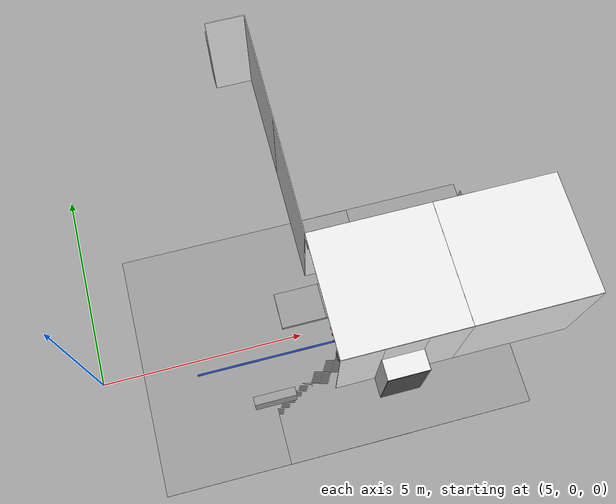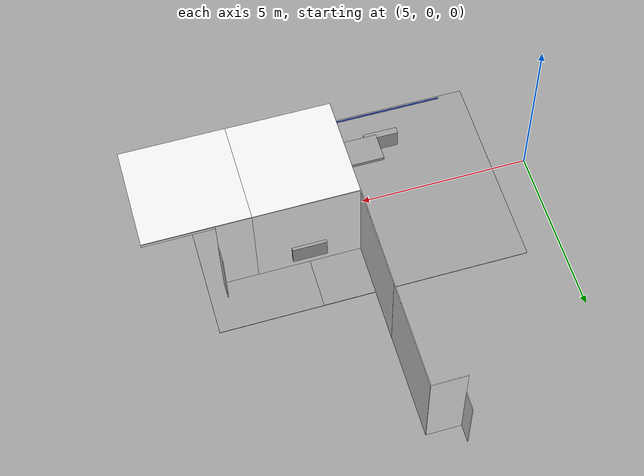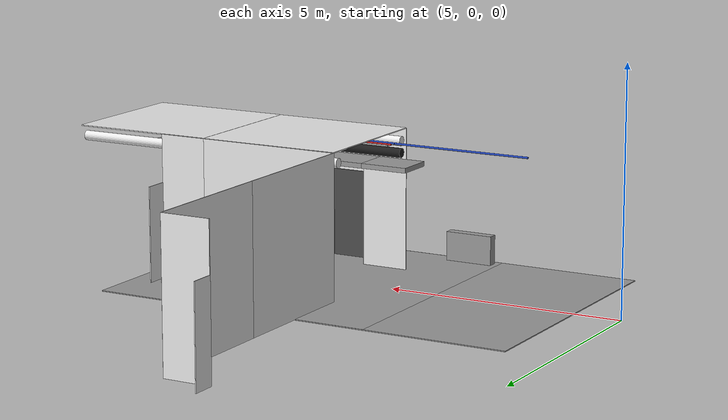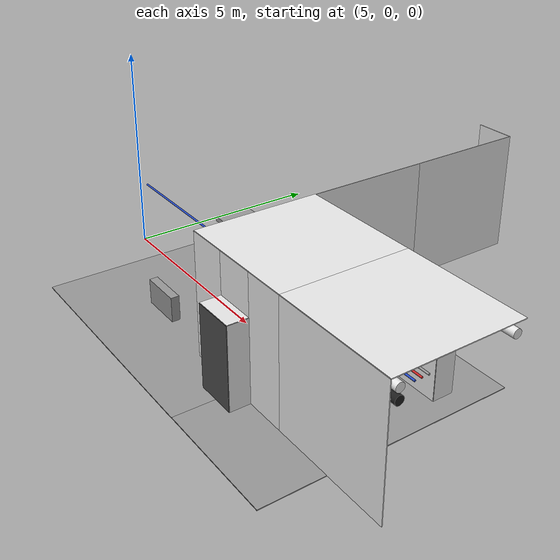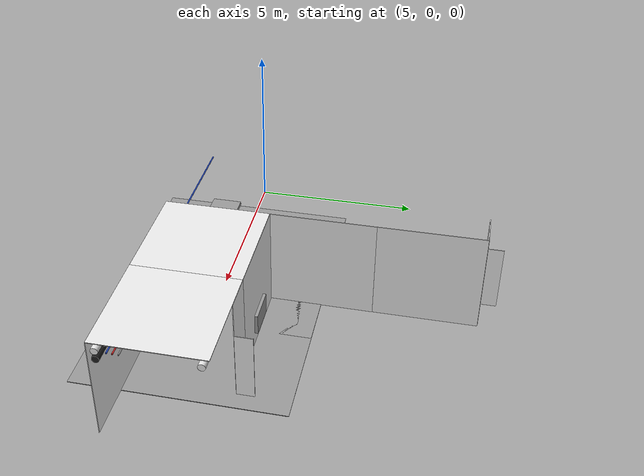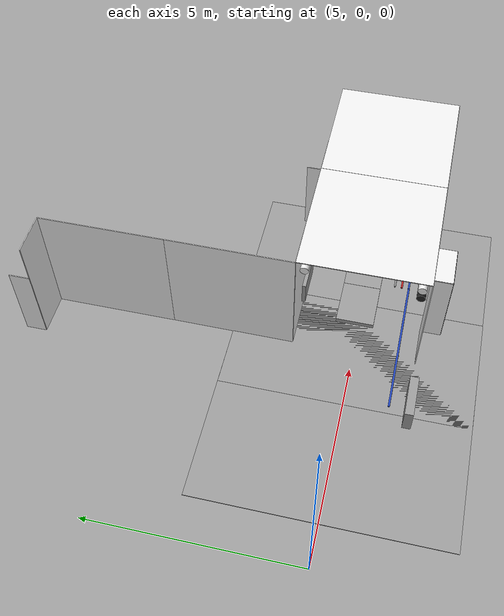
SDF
<sdf version="1.6">
 <world name="default">
  <model name="wall_front_3_2_0_2">
   <static>1</static>
   <pose>10.5 6.0 1.5 0.0 0.0 -1.57</pose>
   <link name="link">
    <collision name="collision"><geometry><box><size>3.0 0.02 3.0</size></box></geometry></collision>
    <visual name="visual">
     <material>
      <script><name>Gazebo/White</name><uri>file://media/materials/scripts/gazebo.material</uri></script>
     </material>
     <geometry><box><size>3.0 0.02 3.0</size></box></geometry>
    </visual>
   </link>
  </model>
  <model name="wall_left_front_left_3_2_0_2">
   <static>1</static>
   <pose>10.0 7.5 1.5 0.0 0.0 0.0</pose>
   <link name="link">
    <collision name="collision"><geometry><box><size>1.0 0.02 3.0</size></box></geometry></collision>
    <visual name="visual">
     <material>
      <script><name>Gazebo/White</name><uri>file://media/materials/scripts/gazebo.material</uri></script>
     </material>
     <geometry><box><size>1.0 0.02 3.0</size></box></geometry>
    </visual>
   </link>
  </model>
  <model name="wall_left_inside_left_3_2_0_2">
   <static>1</static>
   <pose>9.5 7.75 1.0 0.0 0.0 -1.57</pose>
   <link name="link">
    <collision name="collision"><geometry><box><size>0.5 0.02 2</size></box></geometry></collision>
    <visual name="visual">
     <material>
      <script><name>Gazebo/White</name><uri>file://media/materials/scripts/gazebo.material</uri></script>
     </material>
     <geometry><box><size>0.5 0.02 2</size></box></geometry>
    </visual>
   </link>
  </model>
  <model name="wall_left_3_1_0_1">
   <static>1</static>
   <pose>10.5 3.0 1.5 0.0 0.0 4.71</pose>
   <link name="link">
    <collision name="collision"><geometry><box><size>3.0 0.02 3.0</size></box></geometry></collision>
    <visual name="visual">
     <material>
      <script><name>Gazebo/White</name><uri>file://media/materials/scripts/gazebo.material</uri></script>
     </material>
     <geometry><box><size>3.0 0.02 3.0</size></box></geometry>
    </visual>
   </link>
  </model>
  <model name="ceiling_1_3_0_1_3">
   <pose>10.0 0.0 2.55 0.0 0.0 4.71</pose>
   <link name="link_1">
    <visual name="visual">
     <geometry><box><size>0.8 1 0.1</size></box></geometry>
     <material>
      <script><uri>file://media/materials/scripts/gazebo.material</uri><name>Gazebo/Grey</name></script>
     </material>
    </visual>
    <collision name="collision"><geometry><box><size>0.8 1 0.1</size></box></geometry></collision>
   </link>
   <static>1</static>
  </model>
  <model name="blue_pipe_right_1_3_0_0_3">
   <static>1</static>
   <pose>9.0 0.0 2.76 0.0 0.0 4.71</pose>
   <link name="link_0">
    <visual name="visual">
     <pose>1 0 0 1.57 0 0</pose>
     <geometry><cylinder><radius>0.02</radius><length>3.0</length></cylinder></geometry>
     <material>
      <script><uri>file://media/materials/scripts/gazebo.material</uri><name>Gazebo/Blue</name></script>
     </material>
    </visual>
    <collision name="collision">
     <pose>1 0 0 1.57 0 0</pose>
     <geometry><cylinder><radius>0.02</radius><length>3.0</length></cylinder></geometry>
    </collision>
   </link>
  </model>
  <model name="wall_bottom_3_0_0_3">
   <static>1</static>
   <pose>9.0 0.0 0.0 0.0 0.0 3.14</pose>
   <link name="link">
    <collision name="collision"><geometry><box><size>6.0 6.0 0.02</size></box></geometry></collision>
    <visual name="visual">
     <material>
      <script><name>Gazebo/Grey</name><uri>file://media/materials/scripts/gazebo.material</uri></script>
     </material>
     <geometry><box><size>6.0 6.0 0.02</size></box></geometry>
    </visual>
   </link>
  </model>
  <model name="panel_3_0_0_3">
   <static>1</static>
   <pose>9.0 -1.5 0.66 0.0 0.0 4.71</pose>
   <link name="link">
    <collision name="collision"><geometry><box><size>0.2 1 0.6</size></box></geometry></collision>
    <visual name="visual">
     <material>
      <script><name>Gazebo/Grey</name><uri>file://media/materials/scripts/gazebo.material</uri></script>
     </material>
     <geometry><box><size>0.2 1 0.6</size></box></geometry>
    </visual>
   </link>
  </model>
  <model name="wall_left_4_0_0_1">
   <static>1</static>
   <pose>12.0 1.5 1.5 0.0 0.0 0.0</pose>
   <link name="link">
    <collision name="collision"><geometry><box><size>3.0 0.02 3.0</size></box></geometry></collision>
    <visual name="visual">
     <material>
      <script><name>Gazebo/White</name><uri>file://media/materials/scripts/gazebo.material</uri></script>
     </material>
     <geometry><box><size>3.0 0.02 3.0</size></box></geometry>
    </visual>
   </link>
  </model>
  <model name="wall_top_4_0_0_1">
   <static>1</static>
   <pose>12.0 0.0 3.0 1.57 0.0 -1.57</pose>
   <link name="link">
    <collision name="collision"><geometry><box><size>3.0 0.02 3.0</size></box></geometry></collision>
    <visual name="visual">
     <material>
      <script><name>Gazebo/White</name><uri>file://media/materials/scripts/gazebo.material</uri></script>
     </material>
     <geometry><box><size>3.0 0.02 3.0</size></box></geometry>
    </visual>
   </link>
  </model>
  <model name="ceiling_1_4_0_0_1">
   <pose>12.0 0.0 2.55 0.0 0.0 -1.57</pose>
   <link name="link_1">
    <visual name="visual">
     <geometry><box><size>0.8 1 0.1</size></box></geometry>
     <material>
      <script><uri>file://media/materials/scripts/gazebo.material</uri><name>Gazebo/Grey</name></script>
     </material>
    </visual>
    <collision name="collision"><geometry><box><size>0.8 1 0.1</size></box></geometry></collision>
   </link>
   <static>1</static>
  </model>
  <model name="ceiling_1_4_0_1_1">
   <pose>11.0 0.0 2.55 0.0 0.0 -1.57</pose>
   <link name="link_1">
    <visual name="visual">
     <geometry><box><size>0.8 1 0.1</size></box></geometry>
     <material>
      <script><uri>file://media/materials/scripts/gazebo.material</uri><name>Gazebo/Grey</name></script>
     </material>
    </visual>
    <collision name="collision"><geometry><box><size>0.8 1 0.1</size></box></geometry></collision>
   </link>
   <static>1</static>
  </model>
  <model name="ceiling_1_4_0_2_1">
   <pose>13.0 0.0 2.55 0.0 0.0 -1.57</pose>
   <link name="link_1">
    <visual name="visual">
     <geometry><box><size>0.8 1 0.1</size></box></geometry>
     <material>
      <script><uri>file://media/materials/scripts/gazebo.material</uri><name>Gazebo/Grey</name></script>
     </material>
    </visual>
    <collision name="collision"><geometry><box><size>0.8 1 0.1</size></box></geometry></collision>
   </link>
   <static>1</static>
  </model>
  <model name="white_pipe_left_4_0_0_1">
   <static>1</static>
   <pose>12.0 0.0 2.76 0.0 0.0 -1.57</pose>
   <link name="link_0">
    <visual name="visual">
     <pose>-1.3 0 0 1.57 0 0</pose>
     <geometry><cylinder><radius>0.1</radius><length>3.0</length></cylinder></geometry>
     <material>
      <script><uri>file://media/materials/scripts/gazebo.material</uri><name>Gazebo/White</name></script>
     </material>
    </visual>
    <collision name="collision">
     <pose>-1.3 0 0 1.57 0 0</pose>
     <geometry><cylinder><radius>0.1</radius><length>3.0</length></cylinder></geometry>
    </collision>
   </link>
  </model>
  <model name="white_pipe_right_4_0_0_1">
   <static>1</static>
   <pose>12.0 0.0 2.76 0.0 0.0 -1.57</pose>
   <link name="link_0">
    <visual name="visual">
     <pose>1.3 0 0 1.57 0 0</pose>
     <geometry><cylinder><radius>0.1</radius><length>3.0</length></cylinder></geometry>
     <material>
      <script><uri>file://media/materials/scripts/gazebo.material</uri><name>Gazebo/White</name></script>
     </material>
    </visual>
    <collision name="collision">
     <pose>1.3 0 0 1.57 0 0</pose>
     <geometry><cylinder><radius>0.1</radius><length>3.0</length></cylinder></geometry>
    </collision>
   </link>
  </model>
  <model name="black_pipe_right_4_0_0_1">
   <static>1</static>
   <pose>12.0 0.0 2.76 0.0 0.0 -1.57</pose>
   <link name="link_0">
    <visual name="visual">
     <pose>1.3 0 -0.25 1.57 0 0</pose>
     <geometry><cylinder><radius>0.1</radius><length>3.0</length></cylinder></geometry>
     <material>
      <script><uri>file://media/materials/scripts/gazebo.material</uri><name>Gazebo/Black</name></script>
     </material>
    </visual>
    <collision name="collision">
     <pose>1.3 0 -0.25 1.57 0 0</pose>
     <geometry><cylinder><radius>0.1</radius><length>3.0</length></cylinder></geometry>
    </collision>
   </link>
  </model>
  <model name="grey_pipe_right_4_0_0_1">
   <static>1</static>
   <pose>12.0 0.0 2.76 0.0 0.0 -1.57</pose>
   <link name="link_0">
    <visual name="visual">
     <pose>0.7 0 0 1.57 0 0</pose>
     <geometry><cylinder><radius>0.02</radius><length>3.0</length></cylinder></geometry>
     <material>
      <script><uri>file://media/materials/scripts/gazebo.material</uri><name>Gazebo/Grey</name></script>
     </material>
    </visual>
    <collision name="collision">
     <pose>0.7 0 0 1.57 0 0</pose>
     <geometry><cylinder><radius>0.02</radius><length>3.0</length></cylinder></geometry>
    </collision>
   </link>
  </model>
  <model name="red_pipe_right_4_0_0_1">
   <static>1</static>
   <pose>12.0 0.0 2.76 0.0 0.0 -1.57</pose>
   <link name="link_0">
    <visual name="visual">
     <pose>0.85 0 0 1.57 0 0</pose>
     <geometry><cylinder><radius>0.02</radius><length>3.0</length></cylinder></geometry>
     <material>
      <script><uri>file://media/materials/scripts/gazebo.material</uri><name>Gazebo/Red</name></script>
     </material>
    </visual>
    <collision name="collision">
     <pose>0.85 0 0 1.57 0 0</pose>
     <geometry><cylinder><radius>0.02</radius><length>3.0</length></cylinder></geometry>
    </collision>
   </link>
  </model>
  <model name="blue_pipe_right_4_0_0_1">
   <static>1</static>
   <pose>12.0 0.0 2.76 0.0 0.0 -1.57</pose>
   <link name="link_0">
    <visual name="visual">
     <pose>1 0 0 1.57 0 0</pose>
     <geometry><cylinder><radius>0.02</radius><length>3.0</length></cylinder></geometry>
     <material>
      <script><uri>file://media/materials/scripts/gazebo.material</uri><name>Gazebo/Blue</name></script>
     </material>
    </visual>
    <collision name="collision">
     <pose>1 0 0 1.57 0 0</pose>
     <geometry><cylinder><radius>0.02</radius><length>3.0</length></cylinder></geometry>
    </collision>
   </link>
  </model>
  <model name="wall_bottom_4_0_0_1">
   <static>1</static>
   <pose>12.0 0.0 0.0 0.0 0.0 -1.57</pose>
   <link name="link">
    <collision name="collision"><geometry><box><size>6.0 6.0 0.02</size></box></geometry></collision>
    <visual name="visual">
     <material>
      <script><name>Gazebo/Grey</name><uri>file://media/materials/scripts/gazebo.material</uri></script>
     </material>
     <geometry><box><size>6.0 6.0 0.02</size></box></geometry>
    </visual>
   </link>
  </model>
  <model name="wall_right_front_left_4_0_0_1">
   <static>1</static>
   <pose>13.0 -1.5 1.5 0.0 0.0 0.0</pose>
   <link name="link">
    <collision name="collision"><geometry><box><size>1.0 0.02 3.0</size></box></geometry></collision>
    <visual name="visual">
     <material>
      <script><name>Gazebo/White</name><uri>file://media/materials/scripts/gazebo.material</uri></script>
     </material>
     <geometry><box><size>1.0 0.02 3.0</size></box></geometry>
    </visual>
   </link>
  </model>
  <model name="wall_right_front_right_4_0_0_1">
   <static>1</static>
   <pose>11.0 -1.5 1.5 0.0 0.0 0.0</pose>
   <link name="link">
    <collision name="collision"><geometry><box><size>1.0 0.02 3.0</size></box></geometry></collision>
    <visual name="visual">
     <material>
      <script><name>Gazebo/White</name><uri>file://media/materials/scripts/gazebo.material</uri></script>
     </material>
     <geometry><box><size>1.0 0.02 3.0</size></box></geometry>
    </visual>
   </link>
  </model>
  <model name="wall_right_front_up_4_0_0_1">
   <static>1</static>
   <pose>12.0 -1.5 2.5 0.0 0.0 0.0</pose>
   <link name="link">
    <collision name="collision"><geometry><box><size>1.0 0.02 1.0</size></box></geometry></collision>
    <visual name="visual">
     <material>
      <script><name>Gazebo/White</name><uri>file://media/materials/scripts/gazebo.material</uri></script>
     </material>
     <geometry><box><size>1.0 0.02 1.0</size></box></geometry>
    </visual>
   </link>
  </model>
  <model name="wall_right_inside_back_4_0_0_1">
   <static>1</static>
   <pose>12.0 -2.0 1.0 0.0 0.0 0.0</pose>
   <link name="link">
    <collision name="collision"><geometry><box><size>1 0.02 2</size></box></geometry></collision>
    <visual name="visual">
     <material>
      <script><name>Gazebo/DarkGrey</name><uri>file://media/materials/scripts/gazebo.material</uri></script>
     </material>
     <geometry><box><size>1 0.02 2</size></box></geometry>
    </visual>
   </link>
  </model>
  <model name="wall_right_inside_left_4_0_0_1">
   <static>1</static>
   <pose>12.5 -1.75 1.0 0.0 0.0 -1.57</pose>
   <link name="link">
    <collision name="collision"><geometry><box><size>0.5 0.02 2</size></box></geometry></collision>
    <visual name="visual">
     <material>
      <script><name>Gazebo/White</name><uri>file://media/materials/scripts/gazebo.material</uri></script>
     </material>
     <geometry><box><size>0.5 0.02 2</size></box></geometry>
    </visual>
   </link>
  </model>
  <model name="wall_right_inside_right_4_0_0_1">
   <static>1</static>
   <pose>11.5 -1.75 1.0 0.0 0.0 -1.57</pose>
   <link name="link">
    <collision name="collision"><geometry><box><size>0.5 0.02 2</size></box></geometry></collision>
    <visual name="visual">
     <material>
      <script><name>Gazebo/White</name><uri>file://media/materials/scripts/gazebo.material</uri></script>
     </material>
     <geometry><box><size>0.5 0.02 2</size></box></geometry>
    </visual>
   </link>
  </model>
  <model name="wall_right_inside_top_4_0_0_1">
   <static>1</static>
   <pose>12.0 -1.75 2.0 1.57 0.0 0.0</pose>
   <link name="link">
    <collision name="collision"><geometry><box><size>1 0.02 0.5</size></box></geometry></collision>
    <visual name="visual">
     <material>
      <script><name>Gazebo/White</name><uri>file://media/materials/scripts/gazebo.material</uri></script>
     </material>
     <geometry><box><size>1 0.02 0.5</size></box></geometry>
    </visual>
   </link>
  </model>
  <model name="panel_4_0_0_1">
   <static>1</static>
   <pose>12.0 1.5 0.66 0.0 0.0 -1.57</pose>
   <link name="link">
    <collision name="collision"><geometry><box><size>0.2 1 0.6</size></box></geometry></collision>
    <visual name="visual">
     <material>
      <script><name>Gazebo/Grey</name><uri>file://media/materials/scripts/gazebo.material</uri></script>
     </material>
     <geometry><box><size>0.2 1 0.6</size></box></geometry>
    </visual>
   </link>
  </model>
  <model name="wall_right_5_0_0_1">
   <static>1</static>
   <pose>15.0 -1.5 1.5 0.0 0.0 0.0</pose>
   <link name="link">
    <collision name="collision"><geometry><box><size>3.0 0.02 3.0</size></box></geometry></collision>
    <visual name="visual">
     <material>
      <script><name>Gazebo/White</name><uri>file://media/materials/scripts/gazebo.material</uri></script>
     </material>
     <geometry><box><size>3.0 0.02 3.0</size></box></geometry>
    </visual>
   </link>
  </model>
  <model name="wall_top_5_0_0_1">
   <static>1</static>
   <pose>15.0 0.0 3.0 1.57 0.0 -1.57</pose>
   <link name="link">
    <collision name="collision"><geometry><box><size>3.0 0.02 3.0</size></box></geometry></collision>
    <visual name="visual">
     <material>
      <script><name>Gazebo/White</name><uri>file://media/materials/scripts/gazebo.material</uri></script>
     </material>
     <geometry><box><size>3.0 0.02 3.0</size></box></geometry>
    </visual>
   </link>
  </model>
  <model name="ceiling_1_5_0_0_1">
   <pose>15.0 0.0 2.55 0.0 0.0 -1.57</pose>
   <link name="link_1">
    <visual name="visual">
     <geometry><box><size>0.8 1 0.1</size></box></geometry>
     <material>
      <script><uri>file://media/materials/scripts/gazebo.material</uri><name>Gazebo/Grey</name></script>
     </material>
    </visual>
    <collision name="collision"><geometry><box><size>0.8 1 0.1</size></box></geometry></collision>
   </link>
   <static>1</static>
  </model>
  <model name="ceiling_1_5_0_1_1">
   <pose>14.0 0.0 2.55 0.0 0.0 -1.57</pose>
   <link name="link_1">
    <visual name="visual">
     <geometry><box><size>0.8 1 0.1</size></box></geometry>
     <material>
      <script><uri>file://media/materials/scripts/gazebo.material</uri><name>Gazebo/Grey</name></script>
     </material>
    </visual>
    <collision name="collision"><geometry><box><size>0.8 1 0.1</size></box></geometry></collision>
   </link>
   <static>1</static>
  </model>
  <model name="white_pipe_left_5_0_0_1">
   <static>1</static>
   <pose>15.0 0.0 2.76 0.0 0.0 -1.57</pose>
   <link name="link_0">
    <visual name="visual">
     <pose>-1.3 0 0 1.57 0 0</pose>
     <geometry><cylinder><radius>0.1</radius><length>3.0</length></cylinder></geometry>
     <material>
      <script><uri>file://media/materials/scripts/gazebo.material</uri><name>Gazebo/White</name></script>
     </material>
    </visual>
    <collision name="collision">
     <pose>-1.3 0 0 1.57 0 0</pose>
     <geometry><cylinder><radius>0.1</radius><length>3.0</length></cylinder></geometry>
    </collision>
   </link>
  </model>
  <model name="white_pipe_right_5_0_0_1">
   <static>1</static>
   <pose>15.0 0.0 2.76 0.0 0.0 -1.57</pose>
   <link name="link_0">
    <visual name="visual">
     <pose>1.3 0 0 1.57 0 0</pose>
     <geometry><cylinder><radius>0.1</radius><length>3.0</length></cylinder></geometry>
     <material>
      <script><uri>file://media/materials/scripts/gazebo.material</uri><name>Gazebo/White</name></script>
     </material>
    </visual>
    <collision name="collision">
     <pose>1.3 0 0 1.57 0 0</pose>
     <geometry><cylinder><radius>0.1</radius><length>3.0</length></cylinder></geometry>
    </collision>
   </link>
  </model>
  <model name="black_pipe_right_5_0_0_1">
   <static>1</static>
   <pose>15.0 0.0 2.76 0.0 0.0 -1.57</pose>
   <link name="link_0">
    <visual name="visual">
     <pose>1.3 0 -0.25 1.57 0 0</pose>
     <geometry><cylinder><radius>0.1</radius><length>3.0</length></cylinder></geometry>
     <material>
      <script><uri>file://media/materials/scripts/gazebo.material</uri><name>Gazebo/Black</name></script>
     </material>
    </visual>
    <collision name="collision">
     <pose>1.3 0 -0.25 1.57 0 0</pose>
     <geometry><cylinder><radius>0.1</radius><length>3.0</length></cylinder></geometry>
    </collision>
   </link>
  </model>
  <model name="grey_pipe_right_5_0_0_1">
   <static>1</static>
   <pose>15.0 0.0 2.76 0.0 0.0 -1.57</pose>
   <link name="link_0">
    <visual name="visual">
     <pose>0.7 0 0 1.57 0 0</pose>
     <geometry><cylinder><radius>0.02</radius><length>3.0</length></cylinder></geometry>
     <material>
      <script><uri>file://media/materials/scripts/gazebo.material</uri><name>Gazebo/Grey</name></script>
     </material>
    </visual>
    <collision name="collision">
     <pose>0.7 0 0 1.57 0 0</pose>
     <geometry><cylinder><radius>0.02</radius><length>3.0</length></cylinder></geometry>
    </collision>
   </link>
  </model>
  <model name="red_pipe_right_5_0_0_1">
   <static>1</static>
   <pose>15.0 0.0 2.76 0.0 0.0 -1.57</pose>
   <link name="link_0">
    <visual name="visual">
     <pose>0.85 0 0 1.57 0 0</pose>
     <geometry><cylinder><radius>0.02</radius><length>3.0</length></cylinder></geometry>
     <material>
      <script><uri>file://media/materials/scripts/gazebo.material</uri><name>Gazebo/Red</name></script>
     </material>
    </visual>
    <collision name="collision">
     <pose>0.85 0 0 1.57 0 0</pose>
     <geometry><cylinder><radius>0.02</radius><length>3.0</length></cylinder></geometry>
    </collision>
   </link>
  </model>
  <model name="blue_pipe_right_5_0_0_1">
   <static>1</static>
   <pose>15.0 0.0 2.76 0.0 0.0 -1.57</pose>
   <link name="link_0">
    <visual name="visual">
     <pose>1 0 0 1.57 0 0</pose>
     <geometry><cylinder><radius>0.02</radius><length>3.0</length></cylinder></geometry>
     <material>
      <script><uri>file://media/materials/scripts/gazebo.material</uri><name>Gazebo/Blue</name></script>
     </material>
    </visual>
    <collision name="collision">
     <pose>1 0 0 1.57 0 0</pose>
     <geometry><cylinder><radius>0.02</radius><length>3.0</length></cylinder></geometry>
    </collision>
   </link>
  </model>
  <model name="wall_left_front_right_5_0_0_1">
   <static>1</static>
   <pose>14.0 1.5 1.5 0.0 0.0 0.0</pose>
   <link name="link">
    <collision name="collision"><geometry><box><size>1.0 0.02 3.0</size></box></geometry></collision>
    <visual name="visual">
     <material>
      <script><name>Gazebo/White</name><uri>file://media/materials/scripts/gazebo.material</uri></script>
     </material>
     <geometry><box><size>1.0 0.02 3.0</size></box></geometry>
    </visual>
   </link>
  </model>
  <model name="wall_left_inside_right_5_0_0_1">
   <static>1</static>
   <pose>14.5 1.75 1.0 0.0 0.0 -1.57</pose>
   <link name="link">
    <collision name="collision"><geometry><box><size>0.5 0.02 2</size></box></geometry></collision>
    <visual name="visual">
     <material>
      <script><name>Gazebo/White</name><uri>file://media/materials/scripts/gazebo.material</uri></script>
     </material>
     <geometry><box><size>0.5 0.02 2</size></box></geometry>
    </visual>
   </link>
  </model>
 </world>
</sdf>
